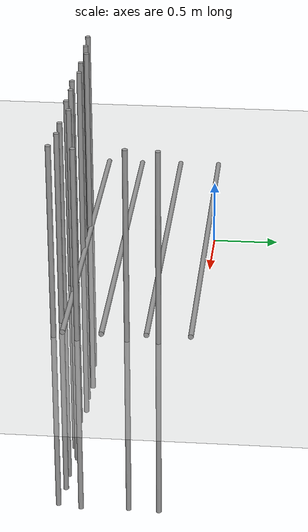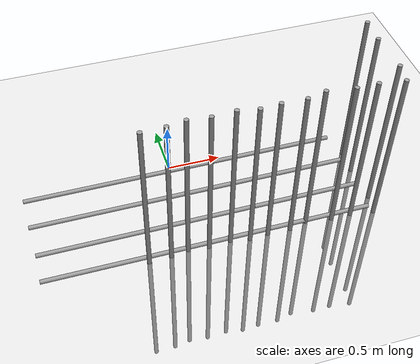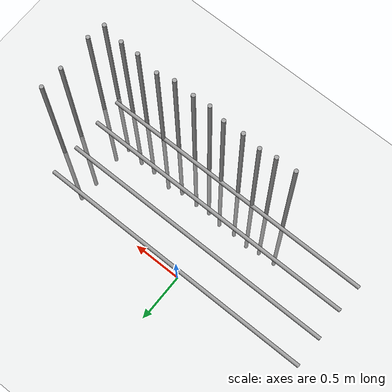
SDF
<sdf version="1.7">
 <world name="default">
  <model name="ground_plane">
   <static>1</static>
   <link name="link">
    <collision name="collision">
     <geometry><plane><normal>0 0 1</normal><size>100 100</size></plane></geometry>
     <surface><friction><ode><mu>100</mu><mu2>50</mu2></ode></friction></surface>
    </collision>
    <visual name="visual">
     <cast_shadows>0</cast_shadows>
     <geometry><plane><normal>0 0 1</normal><size>100 100</size></plane></geometry>
     <material>
      <texture><uri>file:/home/ronin/ws_smart_car/src/world_pkg/world/ground_plane.png</uri></texture>
     </material>
    </visual>
   </link>
  </model>
  <model name="Rebar">
   <static>1</static>
   <link name="link_0">
    <inertial>
     <mass>1</mass>
     <inertia><ixx>0.145833</ixx><ixy>0</ixy><ixz>0</ixz><iyy>0.145833</iyy><iyz>0</iyz><izz>0.125</izz></inertia>
    </inertial>
    <pose>0 0 -0 0 1.57 0</pose>
    <visual name="visual">
     <geometry><cylinder><radius>0.02</radius><length>3</length></cylinder></geometry>
     <material>
      <lighting>1</lighting>
      <script><uri>file://media/materials/scripts/gazebo.material</uri><name>Gazebo/Grey</name></script>
      <shader type="pixel"><normal_map>__default__</normal_map></shader>
      <ambient>0.3 0.3 0.3 1</ambient>
      <diffuse>0.7 0.7 0.7 1</diffuse>
      <specular>0.01 0.01 0.01 1</specular>
      <emissive>0 0 0 1</emissive>
     </material>
    </visual>
    <collision name="collision">
     <geometry><cylinder><radius>0.02</radius><length>3</length></cylinder></geometry>
     <surface>
      <friction>
       <ode><mu>1</mu><mu2>1</mu2><fdir1>0 0 0</fdir1><slip1>0</slip1><slip2>0</slip2></ode>
       <torsional>
        <coefficient>1</coefficient>
        <patch_radius>0</patch_radius>
        <surface_radius>0</surface_radius>
        <use_patch_radius>1</use_patch_radius>
        <ode><slip>0</slip></ode>
       </torsional>
      </friction>
      <bounce><restitution_coefficient>0</restitution_coefficient><threshold>1e+06</threshold></bounce>
      <contact>
       <collide_without_contact>0</collide_without_contact>
       <collide_without_contact_bitmask>1</collide_without_contact_bitmask>
       <collide_bitmask>1</collide_bitmask>
       <ode>
        <soft_cfm>0</soft_cfm>
        <soft_erp>0.2</soft_erp>
        <kp>1e+13</kp>
        <kd>1</kd>
        <max_vel>0.01</max_vel>
        <min_depth>0</min_depth>
       </ode>
       <bullet>
        <split_impulse>1</split_impulse>
        <split_impulse_penetration_threshold>-0.01</split_impulse_penetration_threshold>
        <soft_cfm>0</soft_cfm>
        <soft_erp>0.2</soft_erp>
        <kp>1e+13</kp>
        <kd>1</kd>
       </bullet>
      </contact>
     </surface>
    </collision>
   </link>
   <static>0</static>
   <pose>0.110276 -0.999396 0.019459 3.8e-05 0.001161 -0</pose>
  </model>
  <model name="Rebar_clone">
   <link name="link_0">
    <inertial>
     <mass>1</mass>
     <inertia><ixx>0.145833</ixx><ixy>0</ixy><ixz>0</ixz><iyy>0.145833</iyy><iyz>0</iyz><izz>0.125</izz></inertia>
    </inertial>
    <pose>0 0 -0 0 1.57 0</pose>
    <visual name="visual">
     <geometry><cylinder><radius>0.02</radius><length>3</length></cylinder></geometry>
     <material>
      <lighting>1</lighting>
      <script><uri>file://media/materials/scripts/gazebo.material</uri><name>Gazebo/Grey</name></script>
      <shader type="pixel"><normal_map>__default__</normal_map></shader>
      <ambient>0.3 0.3 0.3 1</ambient>
      <diffuse>0.7 0.7 0.7 1</diffuse>
      <specular>0.01 0.01 0.01 1</specular>
      <emissive>0 0 0 1</emissive>
     </material>
    </visual>
    <collision name="collision">
     <geometry><cylinder><radius>0.02</radius><length>3</length></cylinder></geometry>
     <surface>
      <friction>
       <ode><mu>1</mu><mu2>1</mu2><fdir1>0 0 0</fdir1><slip1>0</slip1><slip2>0</slip2></ode>
       <torsional>
        <coefficient>1</coefficient>
        <patch_radius>0</patch_radius>
        <surface_radius>0</surface_radius>
        <use_patch_radius>1</use_patch_radius>
        <ode><slip>0</slip></ode>
       </torsional>
      </friction>
      <bounce><restitution_coefficient>0</restitution_coefficient><threshold>1e+06</threshold></bounce>
      <contact>
       <collide_without_contact>0</collide_without_contact>
       <collide_without_contact_bitmask>1</collide_without_contact_bitmask>
       <collide_bitmask>1</collide_bitmask>
       <ode>
        <soft_cfm>0</soft_cfm>
        <soft_erp>0.2</soft_erp>
        <kp>1e+13</kp>
        <kd>1</kd>
        <max_vel>0.01</max_vel>
        <min_depth>0</min_depth>
       </ode>
       <bullet>
        <split_impulse>1</split_impulse>
        <split_impulse_penetration_threshold>-0.01</split_impulse_penetration_threshold>
        <soft_cfm>0</soft_cfm>
        <soft_erp>0.2</soft_erp>
        <kp>1e+13</kp>
        <kd>1</kd>
       </bullet>
      </contact>
     </surface>
    </collision>
   </link>
   <static>0</static>
   <pose>0.117632 -0.713055 0.019459 0.000487 0.000436 -1.1e-05</pose>
  </model>
  <model name="Rebar_clone_0">
   <static>1</static>
   <link name="link_0">
    <inertial>
     <mass>1</mass>
     <inertia><ixx>0.145833</ixx><ixy>0</ixy><ixz>0</ixz><iyy>0.145833</iyy><iyz>0</iyz><izz>0.125</izz></inertia>
    </inertial>
    <pose>0 0 -0 0 1.57 0</pose>
    <visual name="visual">
     <geometry><cylinder><radius>0.02</radius><length>3</length></cylinder></geometry>
     <material>
      <lighting>1</lighting>
      <script><uri>file://media/materials/scripts/gazebo.material</uri><name>Gazebo/Grey</name></script>
      <shader type="pixel"><normal_map>__default__</normal_map></shader>
      <ambient>0.3 0.3 0.3 1</ambient>
      <diffuse>0.7 0.7 0.7 1</diffuse>
      <specular>0.01 0.01 0.01 1</specular>
      <emissive>0 0 0 1</emissive>
     </material>
    </visual>
    <collision name="collision">
     <geometry><cylinder><radius>0.02</radius><length>3</length></cylinder></geometry>
     <surface>
      <friction>
       <ode><mu>1</mu><mu2>1</mu2><fdir1>0 0 0</fdir1><slip1>0</slip1><slip2>0</slip2></ode>
       <torsional>
        <coefficient>1</coefficient>
        <patch_radius>0</patch_radius>
        <surface_radius>0</surface_radius>
        <use_patch_radius>1</use_patch_radius>
        <ode><slip>0</slip></ode>
       </torsional>
      </friction>
      <bounce><restitution_coefficient>0</restitution_coefficient><threshold>1e+06</threshold></bounce>
      <contact>
       <collide_without_contact>0</collide_without_contact>
       <collide_without_contact_bitmask>1</collide_without_contact_bitmask>
       <collide_bitmask>1</collide_bitmask>
       <ode>
        <soft_cfm>0</soft_cfm>
        <soft_erp>0.2</soft_erp>
        <kp>1e+13</kp>
        <kd>1</kd>
        <max_vel>0.01</max_vel>
        <min_depth>0</min_depth>
       </ode>
       <bullet>
        <split_impulse>1</split_impulse>
        <split_impulse_penetration_threshold>-0.01</split_impulse_penetration_threshold>
        <soft_cfm>0</soft_cfm>
        <soft_erp>0.2</soft_erp>
        <kp>1e+13</kp>
        <kd>1</kd>
       </bullet>
      </contact>
     </surface>
    </collision>
   </link>
   <static>0</static>
   <pose>0.105314 -0.383399 0.019459 0 0.001153 0</pose>
  </model>
  <model name="Rebar_clone_0_clone">
   <static>1</static>
   <link name="link_0">
    <inertial>
     <mass>1</mass>
     <inertia><ixx>0.145833</ixx><ixy>0</ixy><ixz>0</ixz><iyy>0.145833</iyy><iyz>0</iyz><izz>0.125</izz></inertia>
    </inertial>
    <pose>0 0 -0 0 1.57 0</pose>
    <visual name="visual">
     <geometry><cylinder><radius>0.02</radius><length>3</length></cylinder></geometry>
     <material>
      <lighting>1</lighting>
      <script><uri>file://media/materials/scripts/gazebo.material</uri><name>Gazebo/Grey</name></script>
      <shader type="pixel"><normal_map>__default__</normal_map></shader>
      <ambient>0.3 0.3 0.3 1</ambient>
      <diffuse>0.7 0.7 0.7 1</diffuse>
      <specular>0.01 0.01 0.01 1</specular>
      <emissive>0 0 0 1</emissive>
     </material>
    </visual>
    <collision name="collision">
     <geometry><cylinder><radius>0.02</radius><length>3</length></cylinder></geometry>
     <surface>
      <friction>
       <ode><mu>1</mu><mu2>1</mu2><fdir1>0 0 0</fdir1><slip1>0</slip1><slip2>0</slip2></ode>
       <torsional>
        <coefficient>1</coefficient>
        <patch_radius>0</patch_radius>
        <surface_radius>0</surface_radius>
        <use_patch_radius>1</use_patch_radius>
        <ode><slip>0</slip></ode>
       </torsional>
      </friction>
      <bounce><restitution_coefficient>0</restitution_coefficient><threshold>1e+06</threshold></bounce>
      <contact>
       <collide_without_contact>0</collide_without_contact>
       <collide_without_contact_bitmask>1</collide_without_contact_bitmask>
       <collide_bitmask>1</collide_bitmask>
       <ode>
        <soft_cfm>0</soft_cfm>
        <soft_erp>0.2</soft_erp>
        <kp>1e+13</kp>
        <kd>1</kd>
        <max_vel>0.01</max_vel>
        <min_depth>0</min_depth>
       </ode>
       <bullet>
        <split_impulse>1</split_impulse>
        <split_impulse_penetration_threshold>-0.01</split_impulse_penetration_threshold>
        <soft_cfm>0</soft_cfm>
        <soft_erp>0.2</soft_erp>
        <kp>1e+13</kp>
        <kd>1</kd>
       </bullet>
      </contact>
     </surface>
    </collision>
   </link>
   <static>0</static>
   <pose>0.102907 -0.059179 0.019459 0 0.001153 0</pose>
  </model>
  <model name="Rebar_vertial_clone_7">
   <static>1</static>
   <link name="link_0">
    <inertial>
     <mass>1</mass>
     <inertia><ixx>0.145833</ixx><ixy>0</ixy><ixz>0</ixz><iyy>0.145833</iyy><iyz>0</iyz><izz>0.125</izz></inertia>
    </inertial>
    <visual name="visual">
     <geometry><cylinder><radius>0.02</radius><length>3</length></cylinder></geometry>
     <material>
      <lighting>1</lighting>
      <script><uri>file://media/materials/scripts/gazebo.material</uri><name>Gazebo/Grey</name></script>
      <shader type="pixel"><normal_map>__default__</normal_map></shader>
      <ambient>0.3 0.3 0.3 1</ambient>
      <diffuse>0.7 0.7 0.7 1</diffuse>
      <specular>0.01 0.01 0.01 1</specular>
      <emissive>0 0 0 1</emissive>
     </material>
    </visual>
    <collision name="collision">
     <geometry><cylinder><radius>0.02</radius><length>3</length></cylinder></geometry>
     <surface>
      <friction>
       <ode><mu>1</mu><mu2>1</mu2><fdir1>0 0 0</fdir1><slip1>0</slip1><slip2>0</slip2></ode>
       <torsional>
        <coefficient>1</coefficient>
        <patch_radius>0</patch_radius>
        <surface_radius>0</surface_radius>
        <use_patch_radius>1</use_patch_radius>
        <ode><slip>0</slip></ode>
       </torsional>
      </friction>
      <bounce><restitution_coefficient>0</restitution_coefficient><threshold>1e+06</threshold></bounce>
      <contact>
       <collide_without_contact>0</collide_without_contact>
       <collide_without_contact_bitmask>1</collide_without_contact_bitmask>
       <collide_bitmask>1</collide_bitmask>
       <ode>
        <soft_cfm>0</soft_cfm>
        <soft_erp>0.2</soft_erp>
        <kp>1e+13</kp>
        <kd>1</kd>
        <max_vel>0.01</max_vel>
        <min_depth>0</min_depth>
       </ode>
       <bullet>
        <split_impulse>1</split_impulse>
        <split_impulse_penetration_threshold>-0.01</split_impulse_penetration_threshold>
        <soft_cfm>0</soft_cfm>
        <soft_erp>0.2</soft_erp>
        <kp>1e+13</kp>
        <kd>1</kd>
       </bullet>
      </contact>
     </surface>
    </collision>
   </link>
   <static>0</static>
   <pose>1.66849 -0.289541 0.019459 -0.001562 0.001157 0.000983</pose>
  </model>
  <model name="Rebar_vertial_clone_8">
   <static>1</static>
   <link name="link_0">
    <inertial>
     <mass>1</mass>
     <inertia><ixx>0.145833</ixx><ixy>0</ixy><ixz>0</ixz><iyy>0.145833</iyy><iyz>0</iyz><izz>0.125</izz></inertia>
    </inertial>
    <visual name="visual">
     <geometry><cylinder><radius>0.02</radius><length>3</length></cylinder></geometry>
     <material>
      <lighting>1</lighting>
      <script><uri>file://media/materials/scripts/gazebo.material</uri><name>Gazebo/Grey</name></script>
      <shader type="pixel"><normal_map>__default__</normal_map></shader>
      <ambient>0.3 0.3 0.3 1</ambient>
      <diffuse>0.7 0.7 0.7 1</diffuse>
      <specular>0.01 0.01 0.01 1</specular>
      <emissive>0 0 0 1</emissive>
     </material>
    </visual>
    <collision name="collision">
     <geometry><cylinder><radius>0.02</radius><length>3</length></cylinder></geometry>
     <surface>
      <friction>
       <ode><mu>1</mu><mu2>1</mu2><fdir1>0 0 0</fdir1><slip1>0</slip1><slip2>0</slip2></ode>
       <torsional>
        <coefficient>1</coefficient>
        <patch_radius>0</patch_radius>
        <surface_radius>0</surface_radius>
        <use_patch_radius>1</use_patch_radius>
        <ode><slip>0</slip></ode>
       </torsional>
      </friction>
      <bounce><restitution_coefficient>0</restitution_coefficient><threshold>1e+06</threshold></bounce>
      <contact>
       <collide_without_contact>0</collide_without_contact>
       <collide_without_contact_bitmask>1</collide_without_contact_bitmask>
       <collide_bitmask>1</collide_bitmask>
       <ode>
        <soft_cfm>0</soft_cfm>
        <soft_erp>0.2</soft_erp>
        <kp>1e+13</kp>
        <kd>1</kd>
        <max_vel>0.01</max_vel>
        <min_depth>0</min_depth>
       </ode>
       <bullet>
        <split_impulse>1</split_impulse>
        <split_impulse_penetration_threshold>-0.01</split_impulse_penetration_threshold>
        <soft_cfm>0</soft_cfm>
        <soft_erp>0.2</soft_erp>
        <kp>1e+13</kp>
        <kd>1</kd>
       </bullet>
      </contact>
     </surface>
    </collision>
   </link>
   <static>0</static>
   <pose>1.65702 -0.520808 0.019459 -0.001562 0.001157 0.000983</pose>
  </model>
  <model name="Rebar_vertial_clone_9">
   <static>1</static>
   <link name="link_0">
    <inertial>
     <mass>1</mass>
     <inertia><ixx>0.145833</ixx><ixy>0</ixy><ixz>0</ixz><iyy>0.145833</iyy><iyz>0</iyz><izz>0.125</izz></inertia>
    </inertial>
    <visual name="visual">
     <geometry><cylinder><radius>0.02</radius><length>3</length></cylinder></geometry>
     <material>
      <lighting>1</lighting>
      <script><uri>file://media/materials/scripts/gazebo.material</uri><name>Gazebo/Grey</name></script>
      <shader type="pixel"><normal_map>__default__</normal_map></shader>
      <ambient>0.3 0.3 0.3 1</ambient>
      <diffuse>0.7 0.7 0.7 1</diffuse>
      <specular>0.01 0.01 0.01 1</specular>
      <emissive>0 0 0 1</emissive>
     </material>
    </visual>
    <collision name="collision">
     <geometry><cylinder><radius>0.02</radius><length>3</length></cylinder></geometry>
     <surface>
      <friction>
       <ode><mu>1</mu><mu2>1</mu2><fdir1>0 0 0</fdir1><slip1>0</slip1><slip2>0</slip2></ode>
       <torsional>
        <coefficient>1</coefficient>
        <patch_radius>0</patch_radius>
        <surface_radius>0</surface_radius>
        <use_patch_radius>1</use_patch_radius>
        <ode><slip>0</slip></ode>
       </torsional>
      </friction>
      <bounce><restitution_coefficient>0</restitution_coefficient><threshold>1e+06</threshold></bounce>
      <contact>
       <collide_without_contact>0</collide_without_contact>
       <collide_without_contact_bitmask>1</collide_without_contact_bitmask>
       <collide_bitmask>1</collide_bitmask>
       <ode>
        <soft_cfm>0</soft_cfm>
        <soft_erp>0.2</soft_erp>
        <kp>1e+13</kp>
        <kd>1</kd>
        <max_vel>0.01</max_vel>
        <min_depth>0</min_depth>
       </ode>
       <bullet>
        <split_impulse>1</split_impulse>
        <split_impulse_penetration_threshold>-0.01</split_impulse_penetration_threshold>
        <soft_cfm>0</soft_cfm>
        <soft_erp>0.2</soft_erp>
        <kp>1e+13</kp>
        <kd>1</kd>
       </bullet>
      </contact>
     </surface>
    </collision>
   </link>
   <static>0</static>
   <pose>1.66956 -0.88423 0.019459 -0.001562 0.001157 0.000983</pose>
  </model>
  <model name="Rebar_vertial_clone_10">
   <static>1</static>
   <link name="link_0">
    <inertial>
     <mass>1</mass>
     <inertia><ixx>0.145833</ixx><ixy>0</ixy><ixz>0</ixz><iyy>0.145833</iyy><iyz>0</iyz><izz>0.125</izz></inertia>
    </inertial>
    <visual name="visual">
     <geometry><cylinder><radius>0.02</radius><length>3</length></cylinder></geometry>
     <material>
      <lighting>1</lighting>
      <script><uri>file://media/materials/scripts/gazebo.material</uri><name>Gazebo/Grey</name></script>
      <shader type="pixel"><normal_map>__default__</normal_map></shader>
      <ambient>0.3 0.3 0.3 1</ambient>
      <diffuse>0.7 0.7 0.7 1</diffuse>
      <specular>0.01 0.01 0.01 1</specular>
      <emissive>0 0 0 1</emissive>
     </material>
    </visual>
    <collision name="collision">
     <geometry><cylinder><radius>0.02</radius><length>3</length></cylinder></geometry>
     <surface>
      <friction>
       <ode><mu>1</mu><mu2>1</mu2><fdir1>0 0 0</fdir1><slip1>0</slip1><slip2>0</slip2></ode>
       <torsional>
        <coefficient>1</coefficient>
        <patch_radius>0</patch_radius>
        <surface_radius>0</surface_radius>
        <use_patch_radius>1</use_patch_radius>
        <ode><slip>0</slip></ode>
       </torsional>
      </friction>
      <bounce><restitution_coefficient>0</restitution_coefficient><threshold>1e+06</threshold></bounce>
      <contact>
       <collide_without_contact>0</collide_without_contact>
       <collide_without_contact_bitmask>1</collide_without_contact_bitmask>
       <collide_bitmask>1</collide_bitmask>
       <ode>
        <soft_cfm>0</soft_cfm>
        <soft_erp>0.2</soft_erp>
        <kp>1e+13</kp>
        <kd>1</kd>
        <max_vel>0.01</max_vel>
        <min_depth>0</min_depth>
       </ode>
       <bullet>
        <split_impulse>1</split_impulse>
        <split_impulse_penetration_threshold>-0.01</split_impulse_penetration_threshold>
        <soft_cfm>0</soft_cfm>
        <soft_erp>0.2</soft_erp>
        <kp>1e+13</kp>
        <kd>1</kd>
       </bullet>
      </contact>
     </surface>
    </collision>
   </link>
   <static>0</static>
   <pose>1.63653 -1.06079 0.019459 -0.001562 0.001157 0.000983</pose>
  </model>
  <model name="Rebar_vertial_clone_11">
   <static>1</static>
   <link name="link_0">
    <inertial>
     <mass>1</mass>
     <inertia><ixx>0.145833</ixx><ixy>0</ixy><ixz>0</ixz><iyy>0.145833</iyy><iyz>0</iyz><izz>0.125</izz></inertia>
    </inertial>
    <visual name="visual">
     <geometry><cylinder><radius>0.02</radius><length>3</length></cylinder></geometry>
     <material>
      <lighting>1</lighting>
      <script><uri>file://media/materials/scripts/gazebo.material</uri><name>Gazebo/Grey</name></script>
      <shader type="pixel"><normal_map>__default__</normal_map></shader>
      <ambient>0.3 0.3 0.3 1</ambient>
      <diffuse>0.7 0.7 0.7 1</diffuse>
      <specular>0.01 0.01 0.01 1</specular>
      <emissive>0 0 0 1</emissive>
     </material>
    </visual>
    <collision name="collision">
     <geometry><cylinder><radius>0.02</radius><length>3</length></cylinder></geometry>
     <surface>
      <friction>
       <ode><mu>1</mu><mu2>1</mu2><fdir1>0 0 0</fdir1><slip1>0</slip1><slip2>0</slip2></ode>
       <torsional>
        <coefficient>1</coefficient>
        <patch_radius>0</patch_radius>
        <surface_radius>0</surface_radius>
        <use_patch_radius>1</use_patch_radius>
        <ode><slip>0</slip></ode>
       </torsional>
      </friction>
      <bounce><restitution_coefficient>0</restitution_coefficient><threshold>1e+06</threshold></bounce>
      <contact>
       <collide_without_contact>0</collide_without_contact>
       <collide_without_contact_bitmask>1</collide_without_contact_bitmask>
       <collide_bitmask>1</collide_bitmask>
       <ode>
        <soft_cfm>0</soft_cfm>
        <soft_erp>0.2</soft_erp>
        <kp>1e+13</kp>
        <kd>1</kd>
        <max_vel>0.01</max_vel>
        <min_depth>0</min_depth>
       </ode>
       <bullet>
        <split_impulse>1</split_impulse>
        <split_impulse_penetration_threshold>-0.01</split_impulse_penetration_threshold>
        <soft_cfm>0</soft_cfm>
        <soft_erp>0.2</soft_erp>
        <kp>1e+13</kp>
        <kd>1</kd>
       </bullet>
      </contact>
     </surface>
    </collision>
   </link>
   <static>0</static>
   <pose>1.42083 -1.03127 0.019459 -0.001562 0.001157 0.000983</pose>
  </model>
  <model name="Rebar_vertial_clone_12">
   <static>1</static>
   <link name="link_0">
    <inertial>
     <mass>1</mass>
     <inertia><ixx>0.145833</ixx><ixy>0</ixy><ixz>0</ixz><iyy>0.145833</iyy><iyz>0</iyz><izz>0.125</izz></inertia>
    </inertial>
    <visual name="visual">
     <geometry><cylinder><radius>0.02</radius><length>3</length></cylinder></geometry>
     <material>
      <lighting>1</lighting>
      <script><uri>file://media/materials/scripts/gazebo.material</uri><name>Gazebo/Grey</name></script>
      <shader type="pixel"><normal_map>__default__</normal_map></shader>
      <ambient>0.3 0.3 0.3 1</ambient>
      <diffuse>0.7 0.7 0.7 1</diffuse>
      <specular>0.01 0.01 0.01 1</specular>
      <emissive>0 0 0 1</emissive>
     </material>
    </visual>
    <collision name="collision">
     <geometry><cylinder><radius>0.02</radius><length>3</length></cylinder></geometry>
     <surface>
      <friction>
       <ode><mu>1</mu><mu2>1</mu2><fdir1>0 0 0</fdir1><slip1>0</slip1><slip2>0</slip2></ode>
       <torsional>
        <coefficient>1</coefficient>
        <patch_radius>0</patch_radius>
        <surface_radius>0</surface_radius>
        <use_patch_radius>1</use_patch_radius>
        <ode><slip>0</slip></ode>
       </torsional>
      </friction>
      <bounce><restitution_coefficient>0</restitution_coefficient><threshold>1e+06</threshold></bounce>
      <contact>
       <collide_without_contact>0</collide_without_contact>
       <collide_without_contact_bitmask>1</collide_without_contact_bitmask>
       <collide_bitmask>1</collide_bitmask>
       <ode>
        <soft_cfm>0</soft_cfm>
        <soft_erp>0.2</soft_erp>
        <kp>1e+13</kp>
        <kd>1</kd>
        <max_vel>0.01</max_vel>
        <min_depth>0</min_depth>
       </ode>
       <bullet>
        <split_impulse>1</split_impulse>
        <split_impulse_penetration_threshold>-0.01</split_impulse_penetration_threshold>
        <soft_cfm>0</soft_cfm>
        <soft_erp>0.2</soft_erp>
        <kp>1e+13</kp>
        <kd>1</kd>
       </bullet>
      </contact>
     </surface>
    </collision>
   </link>
   <static>0</static>
   <pose>1.23842 -1.03293 0.019459 -0.001562 0.001157 0.000983</pose>
  </model>
  <model name="Rebar_vertial_clone_13">
   <static>1</static>
   <link name="link_0">
    <inertial>
     <mass>1</mass>
     <inertia><ixx>0.145833</ixx><ixy>0</ixy><ixz>0</ixz><iyy>0.145833</iyy><iyz>0</iyz><izz>0.125</izz></inertia>
    </inertial>
    <visual name="visual">
     <geometry><cylinder><radius>0.02</radius><length>3</length></cylinder></geometry>
     <material>
      <lighting>1</lighting>
      <script><uri>file://media/materials/scripts/gazebo.material</uri><name>Gazebo/Grey</name></script>
      <shader type="pixel"><normal_map>__default__</normal_map></shader>
      <ambient>0.3 0.3 0.3 1</ambient>
      <diffuse>0.7 0.7 0.7 1</diffuse>
      <specular>0.01 0.01 0.01 1</specular>
      <emissive>0 0 0 1</emissive>
     </material>
    </visual>
    <collision name="collision">
     <geometry><cylinder><radius>0.02</radius><length>3</length></cylinder></geometry>
     <surface>
      <friction>
       <ode><mu>1</mu><mu2>1</mu2><fdir1>0 0 0</fdir1><slip1>0</slip1><slip2>0</slip2></ode>
       <torsional>
        <coefficient>1</coefficient>
        <patch_radius>0</patch_radius>
        <surface_radius>0</surface_radius>
        <use_patch_radius>1</use_patch_radius>
        <ode><slip>0</slip></ode>
       </torsional>
      </friction>
      <bounce><restitution_coefficient>0</restitution_coefficient><threshold>1e+06</threshold></bounce>
      <contact>
       <collide_without_contact>0</collide_without_contact>
       <collide_without_contact_bitmask>1</collide_without_contact_bitmask>
       <collide_bitmask>1</collide_bitmask>
       <ode>
        <soft_cfm>0</soft_cfm>
        <soft_erp>0.2</soft_erp>
        <kp>1e+13</kp>
        <kd>1</kd>
        <max_vel>0.01</max_vel>
        <min_depth>0</min_depth>
       </ode>
       <bullet>
        <split_impulse>1</split_impulse>
        <split_impulse_penetration_threshold>-0.01</split_impulse_penetration_threshold>
        <soft_cfm>0</soft_cfm>
        <soft_erp>0.2</soft_erp>
        <kp>1e+13</kp>
        <kd>1</kd>
       </bullet>
      </contact>
     </surface>
    </collision>
   </link>
   <static>0</static>
   <pose>1 -1 0.019459 -0.001562 0.001157 0.000983</pose>
  </model>
  <model name="Rebar_vertial_clone_14">
   <static>1</static>
   <link name="link_0">
    <inertial>
     <mass>1</mass>
     <inertia><ixx>0.145833</ixx><ixy>0</ixy><ixz>0</ixz><iyy>0.145833</iyy><iyz>0</iyz><izz>0.125</izz></inertia>
    </inertial>
    <visual name="visual">
     <geometry><cylinder><radius>0.02</radius><length>3</length></cylinder></geometry>
     <material>
      <lighting>1</lighting>
      <script><uri>file://media/materials/scripts/gazebo.material</uri><name>Gazebo/Grey</name></script>
      <shader type="pixel"><normal_map>__default__</normal_map></shader>
      <ambient>0.3 0.3 0.3 1</ambient>
      <diffuse>0.7 0.7 0.7 1</diffuse>
      <specular>0.01 0.01 0.01 1</specular>
      <emissive>0 0 0 1</emissive>
     </material>
    </visual>
    <collision name="collision">
     <geometry><cylinder><radius>0.02</radius><length>3</length></cylinder></geometry>
     <surface>
      <friction>
       <ode><mu>1</mu><mu2>1</mu2><fdir1>0 0 0</fdir1><slip1>0</slip1><slip2>0</slip2></ode>
       <torsional>
        <coefficient>1</coefficient>
        <patch_radius>0</patch_radius>
        <surface_radius>0</surface_radius>
        <use_patch_radius>1</use_patch_radius>
        <ode><slip>0</slip></ode>
       </torsional>
      </friction>
      <bounce><restitution_coefficient>0</restitution_coefficient><threshold>1e+06</threshold></bounce>
      <contact>
       <collide_without_contact>0</collide_without_contact>
       <collide_without_contact_bitmask>1</collide_without_contact_bitmask>
       <collide_bitmask>1</collide_bitmask>
       <ode>
        <soft_cfm>0</soft_cfm>
        <soft_erp>0.2</soft_erp>
        <kp>1e+13</kp>
        <kd>1</kd>
        <max_vel>0.01</max_vel>
        <min_depth>0</min_depth>
       </ode>
       <bullet>
        <split_impulse>1</split_impulse>
        <split_impulse_penetration_threshold>-0.01</split_impulse_penetration_threshold>
        <soft_cfm>0</soft_cfm>
        <soft_erp>0.2</soft_erp>
        <kp>1e+13</kp>
        <kd>1</kd>
       </bullet>
      </contact>
     </surface>
    </collision>
   </link>
   <static>0</static>
   <pose>0.836852 -1.0403 0.019459 -0.001562 0.001157 0.000983</pose>
  </model>
  <model name="Rebar_vertial_clone_15">
   <static>1</static>
   <link name="link_0">
    <inertial>
     <mass>1</mass>
     <inertia><ixx>0.145833</ixx><ixy>0</ixy><ixz>0</ixz><iyy>0.145833</iyy><iyz>0</iyz><izz>0.125</izz></inertia>
    </inertial>
    <visual name="visual">
     <geometry><cylinder><radius>0.02</radius><length>3</length></cylinder></geometry>
     <material>
      <lighting>1</lighting>
      <script><uri>file://media/materials/scripts/gazebo.material</uri><name>Gazebo/Grey</name></script>
      <shader type="pixel"><normal_map>__default__</normal_map></shader>
      <ambient>0.3 0.3 0.3 1</ambient>
      <diffuse>0.7 0.7 0.7 1</diffuse>
      <specular>0.01 0.01 0.01 1</specular>
      <emissive>0 0 0 1</emissive>
     </material>
    </visual>
    <collision name="collision">
     <geometry><cylinder><radius>0.02</radius><length>3</length></cylinder></geometry>
     <surface>
      <friction>
       <ode><mu>1</mu><mu2>1</mu2><fdir1>0 0 0</fdir1><slip1>0</slip1><slip2>0</slip2></ode>
       <torsional>
        <coefficient>1</coefficient>
        <patch_radius>0</patch_radius>
        <surface_radius>0</surface_radius>
        <use_patch_radius>1</use_patch_radius>
        <ode><slip>0</slip></ode>
       </torsional>
      </friction>
      <bounce><restitution_coefficient>0</restitution_coefficient><threshold>1e+06</threshold></bounce>
      <contact>
       <collide_without_contact>0</collide_without_contact>
       <collide_without_contact_bitmask>1</collide_without_contact_bitmask>
       <collide_bitmask>1</collide_bitmask>
       <ode>
        <soft_cfm>0</soft_cfm>
        <soft_erp>0.2</soft_erp>
        <kp>1e+13</kp>
        <kd>1</kd>
        <max_vel>0.01</max_vel>
        <min_depth>0</min_depth>
       </ode>
       <bullet>
        <split_impulse>1</split_impulse>
        <split_impulse_penetration_threshold>-0.01</split_impulse_penetration_threshold>
        <soft_cfm>0</soft_cfm>
        <soft_erp>0.2</soft_erp>
        <kp>1e+13</kp>
        <kd>1</kd>
       </bullet>
      </contact>
     </surface>
    </collision>
   </link>
   <static>0</static>
   <pose>0.628636 -1.0348 0.019459 -0.001562 0.001157 0.000983</pose>
  </model>
  <model name="Rebar_vertial_clone_16">
   <static>1</static>
   <link name="link_0">
    <inertial>
     <mass>1</mass>
     <inertia><ixx>0.145833</ixx><ixy>0</ixy><ixz>0</ixz><iyy>0.145833</iyy><iyz>0</iyz><izz>0.125</izz></inertia>
    </inertial>
    <visual name="visual">
     <geometry><cylinder><radius>0.02</radius><length>3</length></cylinder></geometry>
     <material>
      <lighting>1</lighting>
      <script><uri>file://media/materials/scripts/gazebo.material</uri><name>Gazebo/Grey</name></script>
      <shader type="pixel"><normal_map>__default__</normal_map></shader>
      <ambient>0.3 0.3 0.3 1</ambient>
      <diffuse>0.7 0.7 0.7 1</diffuse>
      <specular>0.01 0.01 0.01 1</specular>
      <emissive>0 0 0 1</emissive>
     </material>
    </visual>
    <collision name="collision">
     <geometry><cylinder><radius>0.02</radius><length>3</length></cylinder></geometry>
     <surface>
      <friction>
       <ode><mu>1</mu><mu2>1</mu2><fdir1>0 0 0</fdir1><slip1>0</slip1><slip2>0</slip2></ode>
       <torsional>
        <coefficient>1</coefficient>
        <patch_radius>0</patch_radius>
        <surface_radius>0</surface_radius>
        <use_patch_radius>1</use_patch_radius>
        <ode><slip>0</slip></ode>
       </torsional>
      </friction>
      <bounce><restitution_coefficient>0</restitution_coefficient><threshold>1e+06</threshold></bounce>
      <contact>
       <collide_without_contact>0</collide_without_contact>
       <collide_without_contact_bitmask>1</collide_without_contact_bitmask>
       <collide_bitmask>1</collide_bitmask>
       <ode>
        <soft_cfm>0</soft_cfm>
        <soft_erp>0.2</soft_erp>
        <kp>1e+13</kp>
        <kd>1</kd>
        <max_vel>0.01</max_vel>
        <min_depth>0</min_depth>
       </ode>
       <bullet>
        <split_impulse>1</split_impulse>
        <split_impulse_penetration_threshold>-0.01</split_impulse_penetration_threshold>
        <soft_cfm>0</soft_cfm>
        <soft_erp>0.2</soft_erp>
        <kp>1e+13</kp>
        <kd>1</kd>
       </bullet>
      </contact>
     </surface>
    </collision>
   </link>
   <static>0</static>
   <pose>0.458174 -1.04732 0.019459 -0.001562 0.001157 0.000983</pose>
  </model>
  <model name="Rebar_vertial_clone_17">
   <static>1</static>
   <link name="link_0">
    <inertial>
     <mass>1</mass>
     <inertia><ixx>0.145833</ixx><ixy>0</ixy><ixz>0</ixz><iyy>0.145833</iyy><iyz>0</iyz><izz>0.125</izz></inertia>
    </inertial>
    <visual name="visual">
     <geometry><cylinder><radius>0.02</radius><length>3</length></cylinder></geometry>
     <material>
      <lighting>1</lighting>
      <script><uri>file://media/materials/scripts/gazebo.material</uri><name>Gazebo/Grey</name></script>
      <shader type="pixel"><normal_map>__default__</normal_map></shader>
      <ambient>0.3 0.3 0.3 1</ambient>
      <diffuse>0.7 0.7 0.7 1</diffuse>
      <specular>0.01 0.01 0.01 1</specular>
      <emissive>0 0 0 1</emissive>
     </material>
    </visual>
    <collision name="collision">
     <geometry><cylinder><radius>0.02</radius><length>3</length></cylinder></geometry>
     <surface>
      <friction>
       <ode><mu>1</mu><mu2>1</mu2><fdir1>0 0 0</fdir1><slip1>0</slip1><slip2>0</slip2></ode>
       <torsional>
        <coefficient>1</coefficient>
        <patch_radius>0</patch_radius>
        <surface_radius>0</surface_radius>
        <use_patch_radius>1</use_patch_radius>
        <ode><slip>0</slip></ode>
       </torsional>
      </friction>
      <bounce><restitution_coefficient>0</restitution_coefficient><threshold>1e+06</threshold></bounce>
      <contact>
       <collide_without_contact>0</collide_without_contact>
       <collide_without_contact_bitmask>1</collide_without_contact_bitmask>
       <collide_bitmask>1</collide_bitmask>
       <ode>
        <soft_cfm>0</soft_cfm>
        <soft_erp>0.2</soft_erp>
        <kp>1e+13</kp>
        <kd>1</kd>
        <max_vel>0.01</max_vel>
        <min_depth>0</min_depth>
       </ode>
       <bullet>
        <split_impulse>1</split_impulse>
        <split_impulse_penetration_threshold>-0.01</split_impulse_penetration_threshold>
        <soft_cfm>0</soft_cfm>
        <soft_erp>0.2</soft_erp>
        <kp>1e+13</kp>
        <kd>1</kd>
       </bullet>
      </contact>
     </surface>
    </collision>
   </link>
   <static>0</static>
   <pose>0.286191 -1.01631 0.019459 -0.001562 0.001157 0.000983</pose>
  </model>
  <model name="Rebar_vertial_clone_18">
   <static>1</static>
   <link name="link_0">
    <inertial>
     <mass>1</mass>
     <inertia><ixx>0.145833</ixx><ixy>0</ixy><ixz>0</ixz><iyy>0.145833</iyy><iyz>0</iyz><izz>0.125</izz></inertia>
    </inertial>
    <visual name="visual">
     <geometry><cylinder><radius>0.02</radius><length>3</length></cylinder></geometry>
     <material>
      <lighting>1</lighting>
      <script><uri>file://media/materials/scripts/gazebo.material</uri><name>Gazebo/Grey</name></script>
      <shader type="pixel"><normal_map>__default__</normal_map></shader>
      <ambient>0.3 0.3 0.3 1</ambient>
      <diffuse>0.7 0.7 0.7 1</diffuse>
      <specular>0.01 0.01 0.01 1</specular>
      <emissive>0 0 0 1</emissive>
     </material>
    </visual>
    <collision name="collision">
     <geometry><cylinder><radius>0.02</radius><length>3</length></cylinder></geometry>
     <surface>
      <friction>
       <ode><mu>1</mu><mu2>1</mu2><fdir1>0 0 0</fdir1><slip1>0</slip1><slip2>0</slip2></ode>
       <torsional>
        <coefficient>1</coefficient>
        <patch_radius>0</patch_radius>
        <surface_radius>0</surface_radius>
        <use_patch_radius>1</use_patch_radius>
        <ode><slip>0</slip></ode>
       </torsional>
      </friction>
      <bounce><restitution_coefficient>0</restitution_coefficient><threshold>1e+06</threshold></bounce>
      <contact>
       <collide_without_contact>0</collide_without_contact>
       <collide_without_contact_bitmask>1</collide_without_contact_bitmask>
       <collide_bitmask>1</collide_bitmask>
       <ode>
        <soft_cfm>0</soft_cfm>
        <soft_erp>0.2</soft_erp>
        <kp>1e+13</kp>
        <kd>1</kd>
        <max_vel>0.01</max_vel>
        <min_depth>0</min_depth>
       </ode>
       <bullet>
        <split_impulse>1</split_impulse>
        <split_impulse_penetration_threshold>-0.01</split_impulse_penetration_threshold>
        <soft_cfm>0</soft_cfm>
        <soft_erp>0.2</soft_erp>
        <kp>1e+13</kp>
        <kd>1</kd>
       </bullet>
      </contact>
     </surface>
    </collision>
   </link>
   <static>0</static>
   <pose>0.088342 -1.0291 0.019459 -0.001562 0.001157 0.000983</pose>
  </model>
  <model name="Rebar_vertial_clone_19">
   <static>1</static>
   <link name="link_0">
    <inertial>
     <mass>1</mass>
     <inertia><ixx>0.145833</ixx><ixy>0</ixy><ixz>0</ixz><iyy>0.145833</iyy><iyz>0</iyz><izz>0.125</izz></inertia>
    </inertial>
    <visual name="visual">
     <geometry><cylinder><radius>0.02</radius><length>3</length></cylinder></geometry>
     <material>
      <lighting>1</lighting>
      <script><uri>file://media/materials/scripts/gazebo.material</uri><name>Gazebo/Grey</name></script>
      <shader type="pixel"><normal_map>__default__</normal_map></shader>
      <ambient>0.3 0.3 0.3 1</ambient>
      <diffuse>0.7 0.7 0.7 1</diffuse>
      <specular>0.01 0.01 0.01 1</specular>
      <emissive>0 0 0 1</emissive>
     </material>
    </visual>
    <collision name="collision">
     <geometry><cylinder><radius>0.02</radius><length>3</length></cylinder></geometry>
     <surface>
      <friction>
       <ode><mu>1</mu><mu2>1</mu2><fdir1>0 0 0</fdir1><slip1>0</slip1><slip2>0</slip2></ode>
       <torsional>
        <coefficient>1</coefficient>
        <patch_radius>0</patch_radius>
        <surface_radius>0</surface_radius>
        <use_patch_radius>1</use_patch_radius>
        <ode><slip>0</slip></ode>
       </torsional>
      </friction>
      <bounce><restitution_coefficient>0</restitution_coefficient><threshold>1e+06</threshold></bounce>
      <contact>
       <collide_without_contact>0</collide_without_contact>
       <collide_without_contact_bitmask>1</collide_without_contact_bitmask>
       <collide_bitmask>1</collide_bitmask>
       <ode>
        <soft_cfm>0</soft_cfm>
        <soft_erp>0.2</soft_erp>
        <kp>1e+13</kp>
        <kd>1</kd>
        <max_vel>0.01</max_vel>
        <min_depth>0</min_depth>
       </ode>
       <bullet>
        <split_impulse>1</split_impulse>
        <split_impulse_penetration_threshold>-0.01</split_impulse_penetration_threshold>
        <soft_cfm>0</soft_cfm>
        <soft_erp>0.2</soft_erp>
        <kp>1e+13</kp>
        <kd>1</kd>
       </bullet>
      </contact>
     </surface>
    </collision>
   </link>
   <static>0</static>
   <pose>-0.098339 -1.00977 0.019459 -0.001562 0.001157 0.000983</pose>
  </model>
  <model name="Rebar_vertial_clone_20">
   <static>1</static>
   <link name="link_0">
    <inertial>
     <mass>1</mass>
     <inertia><ixx>0.145833</ixx><ixy>0</ixy><ixz>0</ixz><iyy>0.145833</iyy><iyz>0</iyz><izz>0.125</izz></inertia>
    </inertial>
    <visual name="visual">
     <geometry><cylinder><radius>0.02</radius><length>3</length></cylinder></geometry>
     <material>
      <lighting>1</lighting>
      <script><uri>file://media/materials/scripts/gazebo.material</uri><name>Gazebo/Grey</name></script>
      <shader type="pixel"><normal_map>__default__</normal_map></shader>
      <ambient>0.3 0.3 0.3 1</ambient>
      <diffuse>0.7 0.7 0.7 1</diffuse>
      <specular>0.01 0.01 0.01 1</specular>
      <emissive>0 0 0 1</emissive>
     </material>
    </visual>
    <collision name="collision">
     <geometry><cylinder><radius>0.02</radius><length>3</length></cylinder></geometry>
     <surface>
      <friction>
       <ode><mu>1</mu><mu2>1</mu2><fdir1>0 0 0</fdir1><slip1>0</slip1><slip2>0</slip2></ode>
       <torsional>
        <coefficient>1</coefficient>
        <patch_radius>0</patch_radius>
        <surface_radius>0</surface_radius>
        <use_patch_radius>1</use_patch_radius>
        <ode><slip>0</slip></ode>
       </torsional>
      </friction>
      <bounce><restitution_coefficient>0</restitution_coefficient><threshold>1e+06</threshold></bounce>
      <contact>
       <collide_without_contact>0</collide_without_contact>
       <collide_without_contact_bitmask>1</collide_without_contact_bitmask>
       <collide_bitmask>1</collide_bitmask>
       <ode>
        <soft_cfm>0</soft_cfm>
        <soft_erp>0.2</soft_erp>
        <kp>1e+13</kp>
        <kd>1</kd>
        <max_vel>0.01</max_vel>
        <min_depth>0</min_depth>
       </ode>
       <bullet>
        <split_impulse>1</split_impulse>
        <split_impulse_penetration_threshold>-0.01</split_impulse_penetration_threshold>
        <soft_cfm>0</soft_cfm>
        <soft_erp>0.2</soft_erp>
        <kp>1e+13</kp>
        <kd>1</kd>
       </bullet>
      </contact>
     </surface>
    </collision>
   </link>
   <static>0</static>
   <pose>-0.2552 -1.036 0.019459 -0.001562 0.001157 0.000983</pose>
  </model>
  <model name="Rebar_vertial_clone_21">
   <static>1</static>
   <link name="link_0">
    <inertial>
     <mass>1</mass>
     <inertia><ixx>0.145833</ixx><ixy>0</ixy><ixz>0</ixz><iyy>0.145833</iyy><iyz>0</iyz><izz>0.125</izz></inertia>
    </inertial>
    <visual name="visual">
     <geometry><cylinder><radius>0.02</radius><length>3</length></cylinder></geometry>
     <material>
      <lighting>1</lighting>
      <script><uri>file://media/materials/scripts/gazebo.material</uri><name>Gazebo/Grey</name></script>
      <shader type="pixel"><normal_map>__default__</normal_map></shader>
      <ambient>0.3 0.3 0.3 1</ambient>
      <diffuse>0.7 0.7 0.7 1</diffuse>
      <specular>0.01 0.01 0.01 1</specular>
      <emissive>0 0 0 1</emissive>
     </material>
    </visual>
    <collision name="collision">
     <geometry><cylinder><radius>0.02</radius><length>3</length></cylinder></geometry>
     <surface>
      <friction>
       <ode><mu>1</mu><mu2>1</mu2><fdir1>0 0 0</fdir1><slip1>0</slip1><slip2>0</slip2></ode>
       <torsional>
        <coefficient>1</coefficient>
        <patch_radius>0</patch_radius>
        <surface_radius>0</surface_radius>
        <use_patch_radius>1</use_patch_radius>
        <ode><slip>0</slip></ode>
       </torsional>
      </friction>
      <bounce><restitution_coefficient>0</restitution_coefficient><threshold>1e+06</threshold></bounce>
      <contact>
       <collide_without_contact>0</collide_without_contact>
       <collide_without_contact_bitmask>1</collide_without_contact_bitmask>
       <collide_bitmask>1</collide_bitmask>
       <ode>
        <soft_cfm>0</soft_cfm>
        <soft_erp>0.2</soft_erp>
        <kp>1e+13</kp>
        <kd>1</kd>
        <max_vel>0.01</max_vel>
        <min_depth>0</min_depth>
       </ode>
       <bullet>
        <split_impulse>1</split_impulse>
        <split_impulse_penetration_threshold>-0.01</split_impulse_penetration_threshold>
        <soft_cfm>0</soft_cfm>
        <soft_erp>0.2</soft_erp>
        <kp>1e+13</kp>
        <kd>1</kd>
       </bullet>
      </contact>
     </surface>
    </collision>
   </link>
   <static>0</static>
   <pose>-0.453698 -1.04244 0.019459 -0.001562 0.001157 0.000983</pose>
  </model>
 </world>
</sdf>
